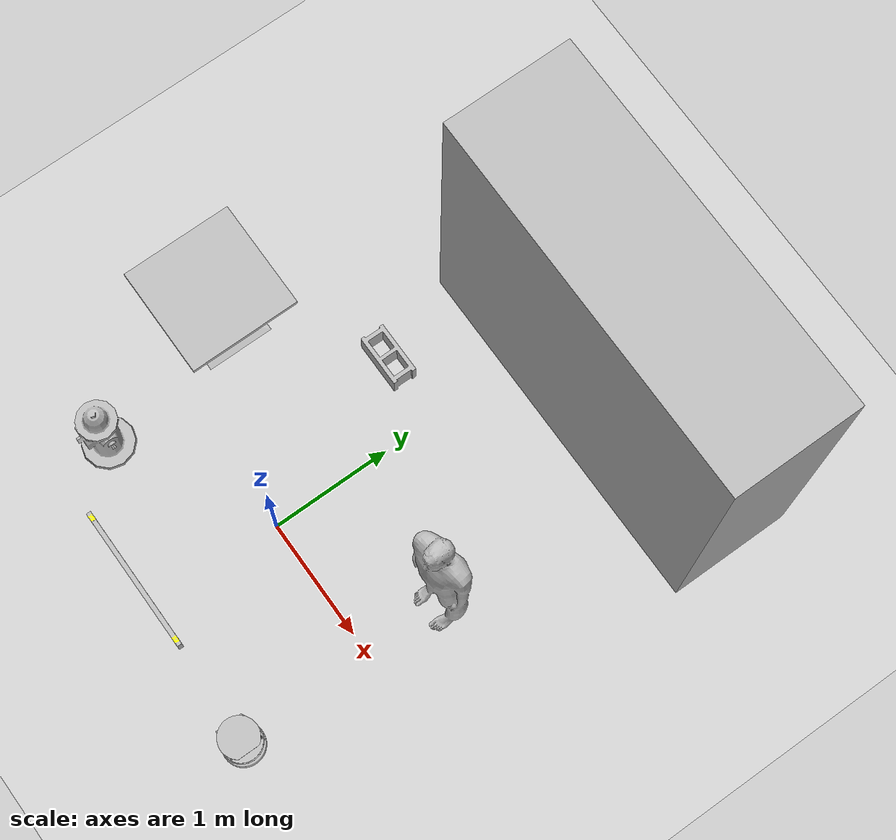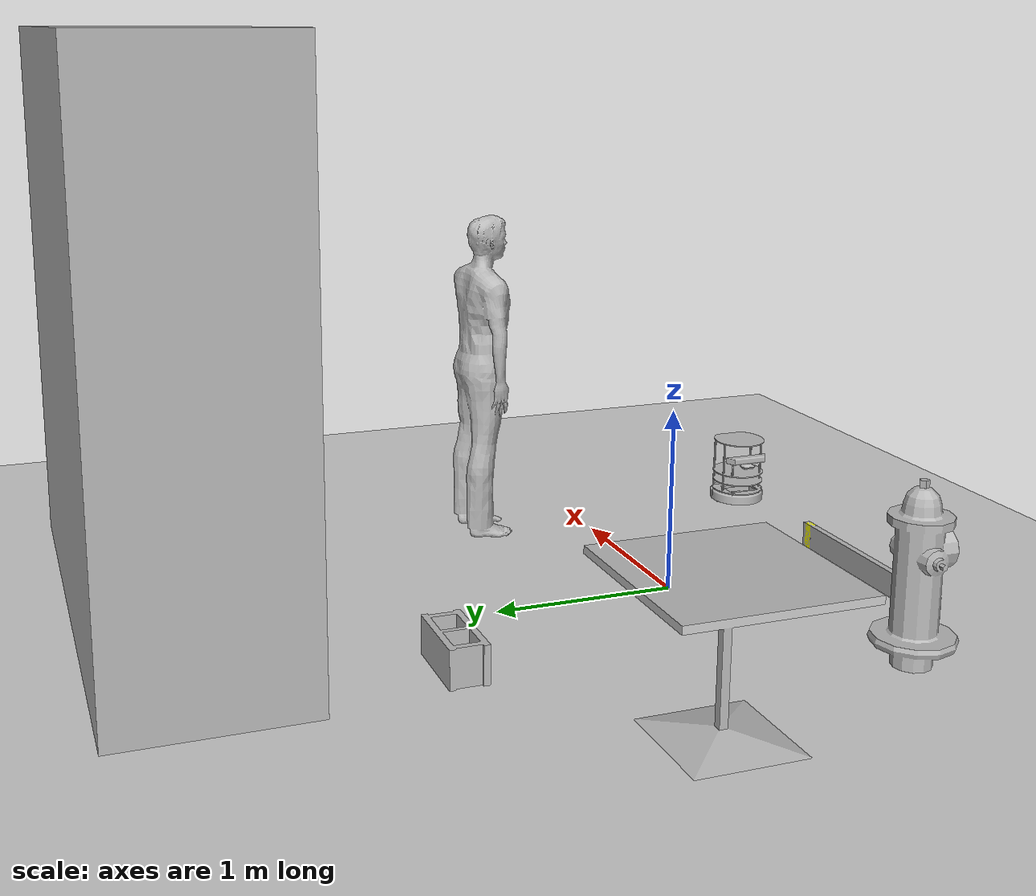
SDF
<sdf version="1.7">
 <world name="default">
  <light name="sun" type="directional">
   <pose>0 0 10 0 -0 0</pose>
   <diffuse>0.8 0.8 0.8 1</diffuse>
   <specular>0.2 0.2 0.2 1</specular>
   <attenuation>
    <range>1000</range>
    <constant>0.9</constant>
    <linear>0.01</linear>
    <quadratic>0.001</quadratic>
   </attenuation>
   <direction>-0.5 0.1 -0.9</direction>
   <spot><inner_angle>0</inner_angle><outer_angle>0</outer_angle><falloff>0</falloff></spot>
  </light>
  <model name="ground_plane">
   <static>1</static>
   <link name="link">
    <collision name="collision">
     <geometry><plane><normal>0 0 1</normal><size>100 100</size></plane></geometry>
     <surface>
      <contact><collide_bitmask>65535</collide_bitmask></contact>
      <friction><ode><mu>100</mu><mu2>50</mu2></ode></friction>
     </surface>
    </collision>
    <visual name="visual">
     <cast_shadows>0</cast_shadows>
     <geometry><plane><normal>0 0 1</normal><size>100 100</size></plane></geometry>
     <material>
      <script><uri>file://media/materials/scripts/gazebo.material</uri><name>Gazebo/Grey</name></script>
     </material>
    </visual>
   </link>
  </model>
  <gravity>0 0 -9.8</gravity>
  <magnetic_field>6e-06 2.3e-05 -4.2e-05</magnetic_field>
  <atmosphere type="adiabatic"/>
  <physics type="ode">
   <max_step_size>0.001</max_step_size>
   <real_time_factor>1</real_time_factor>
   <real_time_update_rate>1000</real_time_update_rate>
  </physics>
  <scene><ambient>0.4 0.4 0.4 1</ambient><background>0.7 0.7 0.7 1</background><shadows>1</shadows></scene>
  <audio><device>default</device></audio>
  <spherical_coordinates>
   <surface_model>EARTH_WGS84</surface_model>
   <latitude_deg>0</latitude_deg>
   <longitude_deg>0</longitude_deg>
   <elevation>0</elevation>
   <heading_deg>0</heading_deg>
  </spherical_coordinates>
  <model name="cafe_table">
   <static>1</static>
   <link name="link">
    <collision name="surface">
     <pose>0 0 0.755 0 -0 0</pose>
     <geometry><box><size>0.913 0.913 0.04</size></box></geometry>
    </collision>
    <collision name="column">
     <pose>0 0 0.37 0 -0 0</pose>
     <geometry><box><size>0.042 0.042 0.74</size></box></geometry>
    </collision>
    <collision name="base">
     <pose>0 0 0.02 0 -0 0</pose>
     <geometry><box><size>0.56 0.56 0.04</size></box></geometry>
    </collision>
    <visual name="visual">
     <geometry><mesh><uri>model://cafe_table/meshes/cafe_table.dae</uri></mesh></geometry>
    </visual>
   </link>
   <pose>-1.58334 0.564788 0 0 -0 0</pose>
  </model>
  <model name="cinder_block">
   <link name="link">
    <inertial>
     <pose>0 0 0.1016 0 -0 0</pose>
     <mass>5</mass>
     <inertia>
      <ixx>0.028705</ixx>
      <ixy>0</ixy>
      <iyy>0.073708</iyy>
      <ixz>0</ixz>
      <iyz>0</iyz>
      <izz>0.06908</izz>
     </inertia>
    </inertial>
    <visual name="visual">
     <geometry><mesh><uri>model://cinder_block/meshes/cinder_block.dae</uri></mesh></geometry>
    </visual>
    <collision name="left">
     <pose>0 -0.08465 0.1016 0 -0 0</pose>
     <geometry><box><size>0.43495 0.0339 0.2032</size></box></geometry>
     <surface>
      <contact><ode><max_vel>0.1</max_vel><min_depth>0.001</min_depth></ode></contact>
      <friction><ode><mu>1</mu><mu2>1</mu2></ode></friction>
     </surface>
    </collision>
    <collision name="right">
     <pose>0 0.08465 0.1016 0 -0 0</pose>
     <geometry><box><size>0.43495 0.0339 0.2032</size></box></geometry>
     <surface>
      <contact><ode><max_vel>0.1</max_vel><min_depth>0.001</min_depth></ode></contact>
      <friction><ode><mu>1</mu><mu2>1</mu2></ode></friction>
     </surface>
    </collision>
    <collision name="front">
     <pose>0.18625 0 0.1016 0 -0 0</pose>
     <geometry><box><size>0.0339 0.1354 0.203</size></box></geometry>
     <surface>
      <contact><ode><max_vel>0.1</max_vel><min_depth>0.001</min_depth></ode></contact>
      <friction><ode><mu>1</mu><mu2>1</mu2></ode></friction>
     </surface>
    </collision>
    <collision name="middle">
     <pose>0 0 0.1016 0 -0 0</pose>
     <geometry><box><size>0.0339 0.1354 0.203</size></box></geometry>
     <surface>
      <contact><ode><max_vel>0.1</max_vel><min_depth>0.001</min_depth></ode></contact>
      <friction><ode><mu>1</mu><mu2>1</mu2></ode></friction>
     </surface>
    </collision>
    <collision name="back">
     <pose>-0.18625 0 0.1016 0 -0 0</pose>
     <geometry><box><size>0.0339 0.1354 0.203</size></box></geometry>
     <surface>
      <contact><ode><max_vel>0.1</max_vel><min_depth>0.001</min_depth></ode></contact>
      <friction><ode><mu>1</mu><mu2>1</mu2></ode></friction>
     </surface>
    </collision>
   </link>
   <pose>-0.56509 1.42722 -6e-06 -1e-06 2.8e-05 -0</pose>
  </model>
  <model name="lumber_2x6x48">
   <link name="link">
    <inertial>
     <mass>2.22</mass>
     <inertia><ixx>0.0039</ixx><ixy>0</ixy><ixz>0</ixz><iyy>0.28</iyy><iyz>0</iyz><izz>0.2766</izz></inertia>
    </inertial>
    <collision name="collision">
     <geometry><box><size>1.2192 0.038 0.1396</size></box></geometry>
     <surface>
      <bounce><restitution_coefficient>0.01</restitution_coefficient><threshold>5</threshold></bounce>
      <friction><ode><mu>5</mu><mu2>5</mu2></ode></friction>
      <contact><ode><soft_cfm>0.01</soft_cfm><kp>10000</kp><kd>1000</kd><min_depth>0.001</min_depth></ode></contact>
     </surface>
    </collision>
    <visual name="visual">
     <geometry><mesh><uri>model://drc_practice_2x6/meshes/2x6x48.dae</uri></mesh></geometry>
    </visual>
   </link>
   <pose>-0.26242 -1.08793 0.068258 -0 -0 -0</pose>
  </model>
  <model name="brick_box_3x1x3">
   <static>1</static>
   <link name="chassis">
    <pose>0 0 1.5 0 -0 0</pose>
    <collision name="collision"><geometry><box><size>3 1 3</size></box></geometry></collision>
    <visual name="visual">
     <geometry><mesh><uri>model://brick_box_3x1x3/meshes/simple_box.dae</uri><scale>3 1 3</scale></mesh></geometry>
     <material>
      <script>
       <uri>model://brick_box_3x1x3/materials/scripts</uri>
       <uri>model://brick_box_3x1x3/materials/textures</uri>
       <name>BrickBox/Diffuse</name>
      </script>
     </material>
    </visual>
   </link>
   <pose>0.636937 2.62091 0 0 -0 0</pose>
  </model>
  <model name="fire_hydrant">
   <static>1</static>
   <link name="link">
    <collision name="collision">
     <geometry><mesh><uri>model://fire_hydrant/meshes/fire_hydrant.dae</uri></mesh></geometry>
    </collision>
    <visual name="visual">
     <geometry><mesh><uri>model://fire_hydrant/meshes/fire_hydrant.dae</uri></mesh></geometry>
    </visual>
   </link>
   <pose>-1.23315 -0.666589 0 0 -0 0</pose>
  </model>
  <model name="turtlebot">
   <link name="rack">
    <inertial>
     <pose>0.001453 -0.000453 0.029787 0 -0 0</pose>
     <inertia>
      <ixx>0.05864</ixx>
      <ixy>0.000124</ixy>
      <ixz>0.000615</ixz>
      <iyy>0.058786</iyy>
      <iyz>1.4e-05</iyz>
      <izz>1.53244</izz>
     </inertia>
     <mass>2.234</mass>
    </inertial>
    <collision name="plate_0_collision">
     <pose>-0.04334 0 0.084757 0 -0 0</pose>
     <geometry><box><size>0.233502 0.314845 0.006401</size></box></geometry>
    </collision>
    <visual name="plate_0_visual">
     <pose>-0.04334 0 0.084757 0 -0 0</pose>
     <geometry><mesh><uri>model://turtlebot/meshes/plate_0_logo.dae</uri></mesh></geometry>
    </visual>
    <collision name="plate_1_collision">
     <pose>-0.00266 0 0.141907 0 -0 0</pose>
     <geometry><box><size>0.314856 0.314856 0.006401</size></box></geometry>
    </collision>
    <visual name="plate_1_visual">
     <pose>-0.00266 0 0.141907 0 -0 0</pose>
     <geometry><mesh><uri>model://turtlebot/meshes/plate_1_logo.dae</uri></mesh></geometry>
    </visual>
    <collision name="plate_2_collision">
     <pose>-0.00266 0 0.199108 0 -0 0</pose>
     <geometry><box><size>0.314856 0.314856 0.006401</size></box></geometry>
    </collision>
    <visual name="plate_2_visual">
     <pose>-0.00266 0 0.199108 0 -0 0</pose>
     <geometry><mesh><uri>model://turtlebot/meshes/plate_1_logo.dae</uri></mesh></geometry>
    </visual>
    <collision name="plate_3_collision">
     <pose>-0.01582 0 0.405457 0 -0 0</pose>
     <geometry><box><size>0.288 0.315 0.006401</size></box></geometry>
    </collision>
    <visual name="plate_3_visual">
     <pose>-0.01582 0 0.405457 0 -0 0</pose>
     <geometry><mesh><uri>model://turtlebot/meshes/plate_2_logo.dae</uri></mesh></geometry>
    </visual>
    <collision name="spacer_0_collision">
     <pose>-0.00254 0.111468 0.079992 0 -0 0</pose>
     <geometry><cylinder><radius>0.0127</radius><length>0.003175</length></cylinder></geometry>
    </collision>
    <visual name="spacer_0_visual">
     <pose>-0.00254 0.111468 0.079992 0 -0 0</pose>
     <geometry><mesh><uri>model://turtlebot/meshes/68-02403-125_Spacer.dae</uri></mesh></geometry>
    </visual>
    <collision name="spacer_1_collision">
     <pose>-0.00254 -0.111468 0.079992 0 -0 0</pose>
     <geometry><cylinder><radius>0.0127</radius><length>0.003175</length></cylinder></geometry>
    </collision>
    <visual name="spacer_1_visual">
     <pose>-0.00254 -0.111468 0.079992 0 -0 0</pose>
     <geometry><mesh><uri>model://turtlebot/meshes/68-02403-125_Spacer.dae</uri></mesh></geometry>
    </visual>
    <collision name="spacer_2_collision">
     <pose>-0.07239 -0.111468 0.079992 0 -0 0</pose>
     <geometry><cylinder><radius>0.0127</radius><length>0.003175</length></cylinder></geometry>
    </collision>
    <visual name="spacer_2_visual">
     <pose>-0.07239 -0.111468 0.079992 0 -0 0</pose>
     <geometry><mesh><uri>model://turtlebot/meshes/68-02403-125_Spacer.dae</uri></mesh></geometry>
    </visual>
    <collision name="spacer_3_collision">
     <pose>-0.07239 0.111468 0.079992 0 -0 0</pose>
     <geometry><cylinder><radius>0.0127</radius><length>0.003175</length></cylinder></geometry>
    </collision>
    <visual name="spacer_3_visual">
     <pose>-0.07239 0.111468 0.079992 0 -0 0</pose>
     <geometry><mesh><uri>model://turtlebot/meshes/68-02403-125_Spacer.dae</uri></mesh></geometry>
    </visual>
    <collision name="standoff_2in_0_collision">
     <pose>0.06764 0.13142 0.08798 0 -0 0</pose>
     <geometry><cylinder><radius>0.0381</radius><length>0.0635</length></cylinder></geometry>
    </collision>
    <visual name="standoff_2in_0_visual">
     <pose>0.06764 0.13142 0.08798 0 -0 0</pose>
     <geometry>
      <mesh><uri>model://turtlebot/meshes/68-04552-2000-RA_Turtlebot_M-F_Standoff.dae</uri></mesh>
     </geometry>
    </visual>
    <collision name="standoff_2in_1_collision">
     <pose>0.06764 -0.13142 0.08798 0 -0 0</pose>
     <geometry><cylinder><radius>0.0381</radius><length>0.0635</length></cylinder></geometry>
    </collision>
    <visual name="standoff_2in_1_visual">
     <pose>0.06764 -0.13142 0.08798 0 -0 0</pose>
     <geometry>
      <mesh><uri>model://turtlebot/meshes/68-04552-2000-RA_Turtlebot_M-F_Standoff.dae</uri></mesh>
     </geometry>
    </visual>
    <collision name="standoff_2in_2_collision">
     <pose>-0.052832 -0.13142 0.08798 0 -0 0</pose>
     <geometry><cylinder><radius>0.0381</radius><length>0.0635</length></cylinder></geometry>
    </collision>
    <visual name="standoff_2in_2_visual">
     <pose>-0.052832 -0.13142 0.08798 0 -0 0</pose>
     <geometry>
      <mesh><uri>model://turtlebot/meshes/68-04552-2000-RA_Turtlebot_M-F_Standoff.dae</uri></mesh>
     </geometry>
    </visual>
    <collision name="standoff_2in_3_collision">
     <pose>-0.052832 0.13142 0.08798 0 -0 0</pose>
     <geometry><cylinder><radius>0.0381</radius><length>0.0635</length></cylinder></geometry>
    </collision>
    <visual name="standoff_2in_3_visual">
     <pose>-0.052832 0.13142 0.08798 0 -0 0</pose>
     <geometry>
      <mesh><uri>model://turtlebot/meshes/68-04552-2000-RA_Turtlebot_M-F_Standoff.dae</uri></mesh>
     </geometry>
    </visual>
    <collision name="standoff_2in_4_collision">
     <pose>0.06764 0.13142 0.14513 0 -0 0</pose>
     <geometry><cylinder><radius>0.0381</radius><length>0.0635</length></cylinder></geometry>
    </collision>
    <visual name="standoff_2in_4_visual">
     <pose>0.06764 0.13142 0.14513 0 -0 0</pose>
     <geometry>
      <mesh><uri>model://turtlebot/meshes/68-04552-2000-RA_Turtlebot_M-F_Standoff.dae</uri></mesh>
     </geometry>
    </visual>
    <collision name="standoff_2in_5_collision">
     <pose>0.06764 -0.13142 0.14513 0 -0 0</pose>
     <geometry><cylinder><radius>0.0381</radius><length>0.0635</length></cylinder></geometry>
    </collision>
    <visual name="standoff_2in_5_visual">
     <pose>0.06764 -0.13142 0.14513 0 -0 0</pose>
     <geometry>
      <mesh><uri>model://turtlebot/meshes/68-04552-2000-RA_Turtlebot_M-F_Standoff.dae</uri></mesh>
     </geometry>
    </visual>
    <collision name="standoff_2in_6_collision">
     <pose>-0.052832 -0.13142 0.14513 0 -0 0</pose>
     <geometry><cylinder><radius>0.0381</radius><length>0.0635</length></cylinder></geometry>
    </collision>
    <visual name="standoff_2in_6_visual">
     <pose>-0.052832 -0.13142 0.14513 0 -0 0</pose>
     <geometry>
      <mesh><uri>model://turtlebot/meshes/68-04552-2000-RA_Turtlebot_M-F_Standoff.dae</uri></mesh>
     </geometry>
    </visual>
    <collision name="standoff_2in_7_collision">
     <pose>-0.052832 0.13142 0.14513 0 -0 0</pose>
     <geometry><cylinder><radius>0.0381</radius><length>0.0635</length></cylinder></geometry>
    </collision>
    <visual name="standoff_2in_7_visual">
     <pose>-0.052832 0.13142 0.14513 0 -0 0</pose>
     <geometry>
      <mesh><uri>model://turtlebot/meshes/68-04552-2000-RA_Turtlebot_M-F_Standoff.dae</uri></mesh>
     </geometry>
    </visual>
    <collision name="standoff_8in_0_collision">
     <pose>0.06764 0.13142 0.20228 0 -0 0</pose>
     <geometry><cylinder><radius>0.011113</radius><length>0.2032</length></cylinder></geometry>
    </collision>
    <visual name="standoff_8in_0_visual">
     <pose>0.06764 0.13142 0.20228 0 -0 0</pose>
     <geometry>
      <mesh><uri>model://turtlebot/meshes/68-02421-8000-RA_Turtlebot_F-F_Standoff.dae</uri></mesh>
     </geometry>
    </visual>
    <collision name="standoff_8in_1_collision">
     <pose>0.06764 -0.13142 0.20228 0 -0 0</pose>
     <geometry><cylinder><radius>0.011113</radius><length>0.2032</length></cylinder></geometry>
    </collision>
    <visual name="standoff_8in_1_visual">
     <pose>0.06764 -0.13142 0.20228 0 -0 0</pose>
     <geometry>
      <mesh><uri>model://turtlebot/meshes/68-02421-8000-RA_Turtlebot_F-F_Standoff.dae</uri></mesh>
     </geometry>
    </visual>
    <collision name="standoff_8in_2_collision">
     <pose>-0.052832 -0.13142 0.20228 0 -0 0</pose>
     <geometry><cylinder><radius>0.011113</radius><length>0.2032</length></cylinder></geometry>
    </collision>
    <visual name="standoff_8in_2_visual">
     <pose>-0.052832 -0.13142 0.20228 0 -0 0</pose>
     <geometry>
      <mesh><uri>model://turtlebot/meshes/68-02421-8000-RA_Turtlebot_F-F_Standoff.dae</uri></mesh>
     </geometry>
    </visual>
    <collision name="standoff_8in_3_collision">
     <pose>-0.052832 0.13142 0.20228 0 -0 0</pose>
     <geometry><cylinder><radius>0.011113</radius><length>0.2032</length></cylinder></geometry>
    </collision>
    <visual name="standoff_8in_3_visual">
     <pose>-0.052832 0.13142 0.20228 0 -0 0</pose>
     <geometry>
      <mesh><uri>model://turtlebot/meshes/68-02421-8000-RA_Turtlebot_F-F_Standoff.dae</uri></mesh>
     </geometry>
    </visual>
    <collision name="standoff_kinect_0_collision">
     <pose>-0.105098 0.098 0.202308 0 -0 0</pose>
     <geometry><cylinder><radius>0.001111</radius><length>0.008585</length></cylinder></geometry>
    </collision>
    <visual name="standoff_kinect_0_visual">
     <pose>-0.105098 0.098 0.202308 0 -0 0</pose>
     <geometry><mesh><uri>model://turtlebot/meshes/68-04556-RA_Kinect_Standoff_Assy.dae</uri></mesh></geometry>
    </visual>
    <collision name="standoff_kinect_1_collision">
     <pose>-0.105098 -0.098 0.202308 0 -0 0</pose>
     <geometry><cylinder><radius>0.001111</radius><length>0.008585</length></cylinder></geometry>
    </collision>
    <visual name="standoff_kinect_1_visual">
     <pose>-0.105098 -0.098 0.202308 0 -0 0</pose>
     <geometry><mesh><uri>model://turtlebot/meshes/68-04556-RA_Kinect_Standoff_Assy.dae</uri></mesh></geometry>
    </visual>
    <sensor name="laser" type="ray">
     <pose>-0.065 0 0.092 0 -0 0</pose>
     <ray>
      <scan>
       <horizontal>
        <samples>180</samples>
        <resolution>1</resolution>
        <min_angle>-2.26893</min_angle>
        <max_angle>2.26893</max_angle>
       </horizontal>
       <vertical><samples>1</samples><min_angle>0</min_angle><max_angle>0</max_angle></vertical>
      </scan>
      <range><min>0.08</min><max>10</max><resolution>0.01</resolution></range>
     </ray>
     <update_rate>20</update_rate>
    </sensor>
   </link>
   <frame name="create::__model__" attached_to="create::base">
    <pose relative_to="__model__">0 0 0 0 -0 0</pose>
   </frame>
   <link name="create::base">
    <inertial>
     <pose>0.001453 -0.000453 0.029787 0 -0 0</pose>
     <inertia>
      <ixx>0.05864</ixx>
      <ixy>0.000124</ixy>
      <ixz>0.000615</ixz>
      <iyy>0.058786</iyy>
      <iyz>1.4e-05</iyz>
      <izz>1.53244</izz>
     </inertia>
     <mass>2.234</mass>
    </inertial>
    <collision name="base_collision">
     <pose>0 0 0.0478 0 -0 0</pose>
     <geometry><cylinder><radius>0.016495</radius><length>0.061163</length></cylinder></geometry>
    </collision>
    <visual name="base_visual">
     <pose>0 0 0.0478 0 -0 0</pose>
     <geometry><mesh><uri>model://create/meshes/create_body.dae</uri></mesh></geometry>
    </visual>
    <collision name="front_wheel_collision">
     <pose>0.13 0 0.017 -0 1.5707 1.5707</pose>
     <geometry><sphere><radius>0.018</radius></sphere></geometry>
     <surface>
      <friction><ode><mu>0</mu><mu2>0</mu2><fdir1>0 0 0</fdir1><slip1>0</slip1><slip2>0</slip2></ode></friction>
     </surface>
    </collision>
    <visual name="front_wheel_visual">
     <pose>0.13 0 0.017 -0 1.5707 1.5707</pose>
     <geometry><sphere><radius>0.009</radius></sphere></geometry>
    </visual>
    <collision name="rear_wheel_collision">
     <pose>-0.13 0 0.017 -0 1.5707 1.5707</pose>
     <geometry><sphere><radius>0.015</radius></sphere></geometry>
     <surface>
      <friction><ode><mu>0</mu><mu2>0</mu2><fdir1>0 0 0</fdir1><slip1>0</slip1><slip2>0</slip2></ode></friction>
     </surface>
    </collision>
    <visual name="rear_wheel_visual">
     <pose>-0.13 0 0.017 -0 1.5707 1.5707</pose>
     <geometry><sphere><radius>0.0075</radius></sphere></geometry>
    </visual>
    <sensor name="left_cliff_sensor" type="ray">
     <pose>0.07 0.14 0.027 0 1.57079 0</pose>
     <ray>
      <scan>
       <horizontal>
        <samples>1</samples>
        <resolution>1</resolution>
        <min_angle>0</min_angle>
        <max_angle>0</max_angle>
       </horizontal>
       <vertical><samples>1</samples><min_angle>0</min_angle><max_angle>0</max_angle></vertical>
      </scan>
      <range><min>0.01</min><max>0.04</max><resolution>0.1</resolution></range>
     </ray>
    </sensor>
    <sensor name="leftfront_cliff_sensor" type="ray">
     <pose>0.15 0.04 0.027 0 1.57079 0</pose>
     <ray>
      <scan>
       <horizontal>
        <samples>1</samples>
        <resolution>1</resolution>
        <min_angle>0</min_angle>
        <max_angle>0</max_angle>
       </horizontal>
       <vertical><samples>1</samples><min_angle>0</min_angle><max_angle>0</max_angle></vertical>
      </scan>
      <range><min>0.01</min><max>0.04</max><resolution>0.1</resolution></range>
     </ray>
    </sensor>
    <sensor name="right_cliff_sensor" type="ray">
     <pose>0.07 -0.14 0.027 0 1.57079 0</pose>
     <ray>
      <scan>
       <horizontal>
        <samples>1</samples>
        <resolution>1</resolution>
        <min_angle>0</min_angle>
        <max_angle>0</max_angle>
       </horizontal>
       <vertical><samples>1</samples><min_angle>0</min_angle><max_angle>0</max_angle></vertical>
      </scan>
      <range><min>0.01</min><max>0.04</max><resolution>0.1</resolution></range>
     </ray>
    </sensor>
    <sensor name="rightfront_cliff_sensor" type="ray">
     <pose>0.15 -0.04 0.027 0 1.57079 0</pose>
     <ray>
      <scan>
       <horizontal>
        <samples>1</samples>
        <resolution>1</resolution>
        <min_angle>0</min_angle>
        <max_angle>0</max_angle>
       </horizontal>
       <vertical><samples>1</samples><min_angle>0</min_angle><max_angle>0</max_angle></vertical>
      </scan>
      <range><min>0.01</min><max>0.04</max><resolution>0.1</resolution></range>
     </ray>
    </sensor>
    <sensor name="wall_sensor" type="ray">
     <pose>0.09 -0.12 0.059 0 0 -1</pose>
     <ray>
      <scan>
       <horizontal>
        <samples>1</samples>
        <resolution>1</resolution>
        <min_angle>0</min_angle>
        <max_angle>0</max_angle>
       </horizontal>
       <vertical><samples>1</samples><min_angle>0</min_angle><max_angle>0</max_angle></vertical>
      </scan>
      <range><min>0.016</min><max>0.04</max><resolution>0.1</resolution></range>
     </ray>
    </sensor>
    <pose relative_to="create::__model__">0 0 0 0 -0 0</pose>
   </link>
   <link name="create::left_wheel">
    <pose relative_to="create::__model__">0 0.13 0.032 0 -0 0</pose>
    <inertial>
     <inertia><ixx>0.001</ixx><ixy>0</ixy><ixz>0</ixz><iyy>0.001</iyy><iyz>0</iyz><izz>0.001</izz></inertia>
     <mass>0.01</mass>
    </inertial>
    <collision name="collision">
     <pose>0 0 0 -0 1.5707 1.5707</pose>
     <geometry><cylinder><radius>0.033</radius><length>0.023</length></cylinder></geometry>
     <surface>
      <friction><ode><mu>10</mu><mu2>10</mu2><fdir1>0 0 0</fdir1><slip1>0</slip1><slip2>0</slip2></ode></friction>
     </surface>
    </collision>
    <visual name="visual">
     <pose>0 0 0 -0 1.5707 1.5707</pose>
     <geometry><cylinder><radius>0.033</radius><length>0.023</length></cylinder></geometry>
    </visual>
   </link>
   <link name="create::right_wheel">
    <pose relative_to="create::__model__">0 -0.13 0.032 0 -0 0</pose>
    <inertial>
     <inertia><ixx>0.001</ixx><ixy>0</ixy><ixz>0</ixz><iyy>0.001</iyy><iyz>0</iyz><izz>0.001</izz></inertia>
     <mass>0.01</mass>
    </inertial>
    <collision name="collision">
     <pose>0 0 0 -0 1.5707 1.5707</pose>
     <geometry><cylinder><radius>0.033</radius><length>0.023</length></cylinder></geometry>
     <surface>
      <friction><ode><mu>10</mu><mu2>10</mu2><fdir1>0 0 0</fdir1><slip1>0</slip1><slip2>0</slip2></ode></friction>
     </surface>
    </collision>
    <visual name="visual">
     <pose>0 0 0 -0 1.5707 1.5707</pose>
     <geometry><cylinder><radius>0.033</radius><length>0.023</length></cylinder></geometry>
    </visual>
   </link>
   <joint name="create::left_wheel" type="revolute">
    <parent>create::base</parent>
    <child>create::left_wheel</child>
    <axis>
     <xyz expressed_in="create::__model__">0 1 0</xyz>
     <limit><lower>-1e+16</lower><upper>1e+16</upper></limit>
     <dynamics><spring_reference>0</spring_reference><spring_stiffness>0</spring_stiffness></dynamics>
    </axis>
   </joint>
   <joint name="create::right_wheel" type="revolute">
    <parent>create::base</parent>
    <child>create::right_wheel</child>
    <axis>
     <xyz expressed_in="create::__model__">0 1 0</xyz>
     <limit><lower>-1e+16</lower><upper>1e+16</upper></limit>
     <dynamics><spring_reference>0</spring_reference><spring_stiffness>0</spring_stiffness></dynamics>
    </axis>
   </joint>
   <frame name="kinect::__model__" attached_to="kinect::link">
    <pose relative_to="__model__">-0.087098 0 0.303857 0 -0 0</pose>
   </frame>
   <link name="kinect::link">
    <inertial>
     <mass>0.1</mass>
     <inertia><ixx>1</ixx><ixy>0</ixy><ixz>0</ixz><iyy>1</iyy><iyz>0</iyz><izz>1</izz></inertia>
    </inertial>
    <collision name="collision"><geometry><box><size>0.073 0.276 0.072</size></box></geometry></collision>
    <visual name="visual"><geometry><mesh><uri>model://kinect/meshes/kinect.dae</uri></mesh></geometry></visual>
    <sensor name="camera" type="depth">
     <update_rate>20</update_rate>
     <camera>
      <horizontal_fov>1.0472</horizontal_fov>
      <image><width>640</width><height>480</height><format>R8G8B8</format></image>
      <clip><near>0.05</near><far>3</far></clip>
     </camera>
    </sensor>
    <pose relative_to="kinect::__model__">0 0 0 0 -0 0</pose>
   </link>
   <joint name="create_rack" type="revolute">
    <parent>create::base</parent>
    <child>rack</child>
    <axis>
     <xyz expressed_in="__model__">0 0 1</xyz>
     <limit><lower>0</lower><upper>0</upper></limit>
     <dynamics><spring_reference>0</spring_reference><spring_stiffness>0</spring_stiffness></dynamics>
    </axis>
   </joint>
   <joint name="kinect_rack" type="revolute">
    <parent>kinect::link</parent>
    <child>rack</child>
    <axis>
     <xyz expressed_in="__model__">0 0 1</xyz>
     <limit><lower>0</lower><upper>0</upper></limit>
     <dynamics><spring_reference>0</spring_reference><spring_stiffness>0</spring_stiffness></dynamics>
    </axis>
   </joint>
   <pose>1.20355 -1.11262 0.000826 -0.000182 -0.021089 -0.00036</pose>
  </model>
  <model name="person_standing">
   <link name="link">
    <inertial>
     <pose>0 -0.1 0.95 0 -0 0</pose>
     <mass>80</mass>
     <inertia><ixx>24.88</ixx><ixy>0</ixy><ixz>0</ixz><iyy>25.73</iyy><iyz>0</iyz><izz>2.48</izz></inertia>
    </inertial>
    <collision name="bottom">
     <pose>0 -0.1 0.01 0 -0 0</pose>
     <geometry><box><size>0.5 0.35 0.02</size></box></geometry>
    </collision>
    <collision name="person">
     <pose>0 0 0.02 0.04 -0 0</pose>
     <geometry><mesh><uri>model://person_standing/meshes/standing.dae</uri></mesh></geometry>
    </collision>
    <visual name="visual">
     <pose>0 0 0.02 0.04 -0 0</pose>
     <geometry><mesh><uri>model://person_standing/meshes/standing.dae</uri></mesh></geometry>
    </visual>
   </link>
   <pose>1.18058 0.737828 0 -2e-06 1e-06 -0.000307</pose>
  </model>
 </world>
</sdf>
